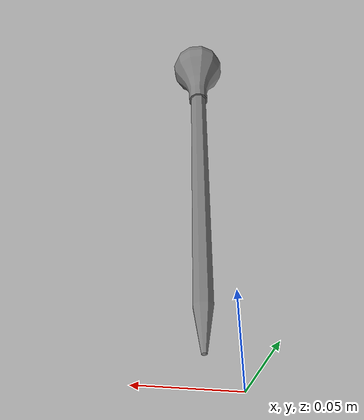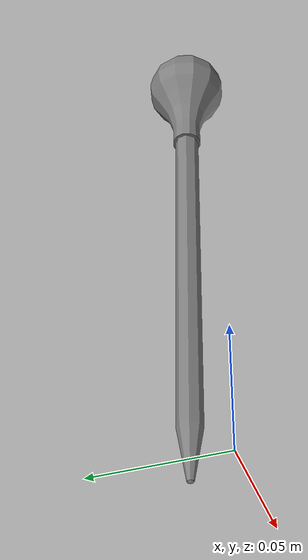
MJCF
<mujoco model="Dropper">

  <compiler angle="radian" meshdir="../../assets" />

  <option gravity="0 0 -9.81" />

  <asset>

    <mesh name="dropper_mesh" file="Dropper/base.obj" scale="1.200000 1.200000 1.200000" />
  </asset>

  <worldbody>
    <body name="dropper" quat="0.7071 0.7071 0 0">

      <geom name="dropper_visual" type="mesh" mesh="dropper_mesh" contype="0" conaffinity="0" />

      <geom name="dropper_collision" type="mesh" mesh="dropper_mesh" rgba="0.8 0.8 0.8 1" contype="1" conaffinity="1" density="2500" friction="1.0 0.3 0.001" />

    </body>
  </worldbody>
</mujoco>
